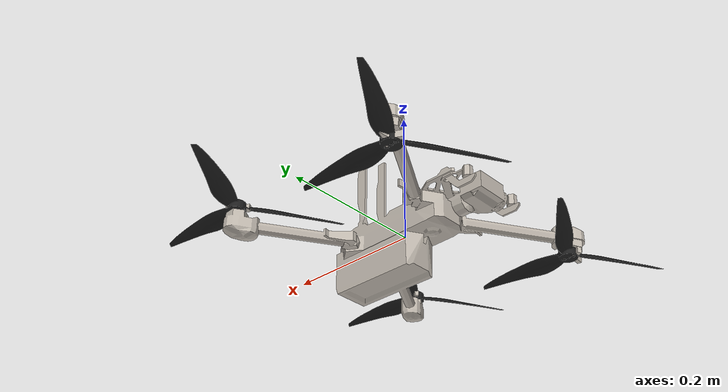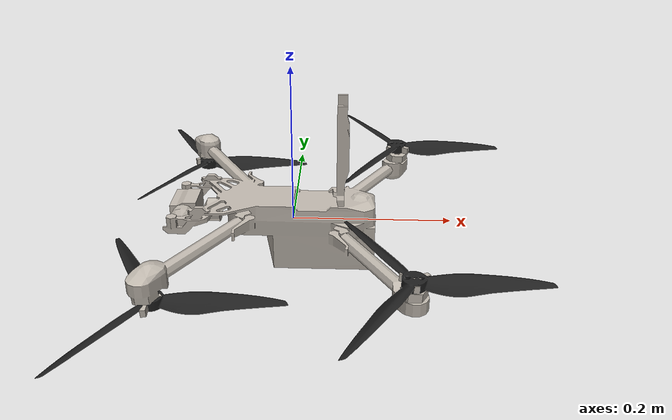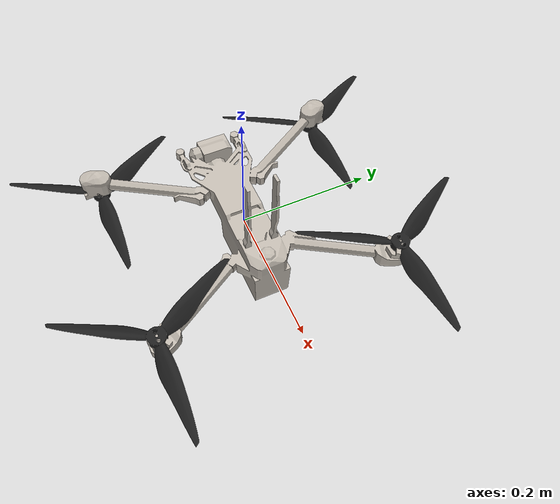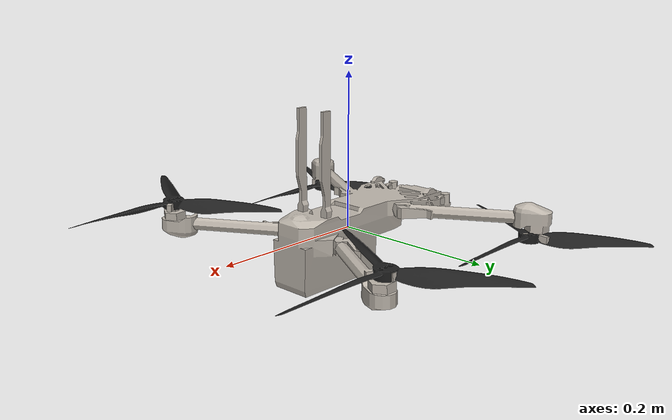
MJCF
<mujoco model="Skydio X2">
  <compiler angle="radian" autolimits="true" assetdir="assets" texturedir="textures/" meshdir="Meshes/" balanceinertia="true"/>
  <option timestep="0.01" density="1.225" viscosity="1.8e-5"/>
  <default>
    <default class="x2">
      <geom mass="0"/>
      <motor ctrlrange="0 13"/>
      <default class="visual">
        <geom group="2" type="mesh" contype="0" conaffinity="0"/>
      </default>
      <default class="collision">
        <geom group="3" type="box"/>
      </default>
      <default class="rotor_visual">
        <geom type="mesh" mesh="tri_blade_propeller" material="propeller_dark" group="2" contype="0" conaffinity="0"/>
      </default>
      <site group="5"/>
    </default>
    <joint damping="0.1" armature="0.01" frictionloss="0.02"/>
    <default class="rotor_joint">
      <joint type="hinge" axis="0 0 1" limited="false" damping="0.02" armature="0.0005"/>
    </default>
  </default>
  <asset>
    <texture type="2d" file="X2_lowpoly_texture_SpinningProps_1024.png"/>
    <material name="phong3SG" texture="X2_lowpoly_texture_SpinningProps_1024"/>
    <material name="invisible" rgba="0 0 0 0"/>
    <material name="propeller_dark" rgba="0.12 0.12 0.12 1"/>
    <mesh name="X2_lowpoly" class="x2" file="X2_lowpoly_noplates.obj" scale="0.01 0.01 0.01"/>
    <mesh name="tri_blade_propeller" file="tri_blade_propeller.stl" scale="2.9 2.9 2.9"/>
  </asset>
  <worldbody>
    <light name="spotlight" mode="targetbodycom" target="drone_frame" pos="0 -1 2"/>
    <body name="drone_frame" pos="0 0 0" childclass="x2">
      <joint name="drone_free" type="free"/>
      <body name="camera" pos="0.435 0.025 0.266" euler="0 -0.436332 1.5707963">
      <camera name="indi_eye_camera"  pos="0 0 0"  fovy="90"/>
      </body>
      <body name="Drone">
        <inertial pos="0 0 0" mass="1.325" diaginertia="0.022 0.014 0.034"/>
        <site name="imu" pos="0 0 0"/>
        <site name="drone_body_center_site" pos="0 0 0"/>
        <geom material="phong3SG" mesh="X2_lowpoly" class="visual" quat="0 0 1 1" pos="0 0 -0.054" name="default_geom0"/>
        <geom class="collision" size=".06 .027 .02" pos=".04 0 -.034" name="default_geom1"/>
        <geom class="collision" size=".06 .027 .02" pos=".04 0 .006" name="default_geom2"/>
        <geom class="collision" size=".05 .027 .02" pos="-.07 0 .011" name="default_geom3"/>
        <geom class="collision" size=".023 .017 .01" pos="-.137 .008 .011" quat="1 0 0 1" name="default_geom4"/>
        <geom size=".16 .04 .02" pos="0 0 -.034" type="ellipsoid" class="visual" material="invisible" name="default_geom9"/>

        <site name="thrust1" pos="-.14 -.18 -.004"/>
        <site name="thrust2" pos="-.14 .18 -.004"/>
        <site name="thrust3" pos=".14 .18 .026"/>
        <site name="thrust4" pos=".14 -.18 .026"/>

        <body name="rotor_fr" pos="-.14 -.18 -.004">
          <inertial pos="0 0 0" mass="0.0001" diaginertia="1e-8 1e-8 1e-8"/>
          <joint class="rotor_joint" name="FR_joint"/>
          <site name="rotor_fr_site" pos="0 0 0"/>
          <geom name="rotor1" class="rotor_visual"/>
        </body>

        <body name="rotor_fl" pos="-.14 .18 -.004">
          <inertial pos="0 0 0" mass="0.0001" diaginertia="1e-8 1e-8 1e-8"/>
          <joint class="rotor_joint" name="FL_joint"/>
          <site name="rotor_fl_site" pos="0 0 0"/>
          <geom name="rotor2" class="rotor_visual"/>
        </body>

        <body name="rotor_bl" pos=".14 .18 .026">
          <inertial pos="0 0 0" mass="0.0001" diaginertia="1e-8 1e-8 1e-8"/>
          <joint class="rotor_joint" name="BL_joint"/>
          <site name="rotor_bl_site" pos="0 0 0"/>
          <geom name="rotor3" class="rotor_visual"/>
        </body>

        <body name="rotor_br" pos=".14 -.18 .026">
          <inertial pos="0 0 0" mass="0.0001" diaginertia="1e-8 1e-8 1e-8"/>
          <joint class="rotor_joint" name="BR_joint"/>
          <site name="rotor_br_site" pos="0 0 0"/>
          <geom name="rotor4" class="rotor_visual"/>
        </body>
      </body>
    </body>
  </worldbody>
  <sensor>
    <gyro name="body_gyro" site="imu"/>
    <accelerometer name="body_linacc" site="imu"/>
    <framequat name="body_quat" objtype="site" objname="imu"/>
  </sensor>
</mujoco>
